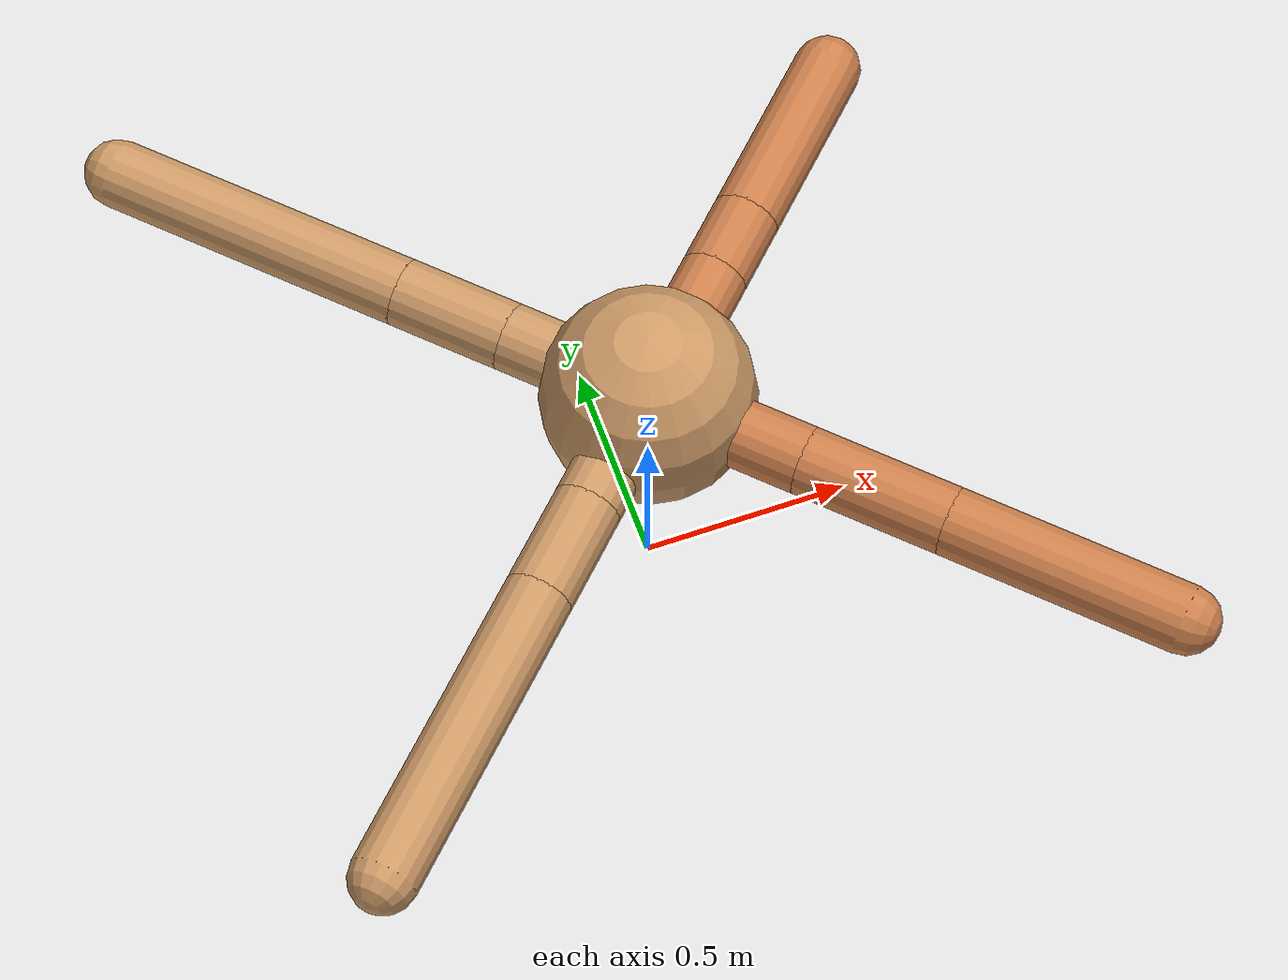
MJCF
<mujoco model="ant">
  <compiler angle="degree" coordinate="local" inertiafromgeom="true" />
  <option integrator="RK4" timestep="0.01" />
  <custom>
    <numeric data="0.0 0.0 0.55 1.0 0.0 0.0 0.0 0.0 1.0 0.0 -1.0 0.0 -1.0 0.0 1.0" name="init_qpos" />
  </custom>
  <default>
    <joint armature="1" damping="1" limited="true" />
    <geom conaffinity="0" condim="3" density="5.0" friction="1.5 0.1 0.1" margin="0.01" rgba="0.8 0.6 0.4 1" />
  </default>
  <worldbody>
    <body name="torso" pos="0 0 0.75">
      <geom name="torso_geom" pos="0 0 0" size="0.25" type="sphere" />

      <body name="front_left_leg" pos="0 0 0">
        <geom fromto="0.0 0.0 0.0 0.24680164368279256 0.24680164368279256 0.0" name="aux_1_geom" size="0.08" type="capsule" rgba=".8 .5 .3 1" />
        <body name="aux_1" pos="0.24680164368279256 0.24680164368279256 0.0">
          <joint axis="0 0 1" name="hip_1" pos="0.0 0.0 0.0" range="-40 40" type="hinge" />
          <geom fromto="0.0 0.0 0.0 0.12255419980895754 0.12255419980895754 0.0" name="left_leg_geom" size="0.08" type="capsule" rgba=".8 .5 .3 1" />
          <body pos="0.12255419980895754 0.12255419980895754 0.0" name="front_left_foot">
            <joint axis="-1 1 0" name="ankle_1" pos="0.0 0.0 0.0" range="30 100" type="hinge" />
            <geom fromto="0.0 0.0 0.0 0.3187631783305472 0.3187631783305472 0.0" name="left_ankle_geom" size="0.08" type="capsule" rgba=".8 .5 .3 1" />
          </body>
        </body>
      </body>
      <body name="front_right_leg" pos="0 0 0">
        <geom fromto="0.0 0.0 0.0 -0.24814992208332934 0.24814992208332934 0.0" name="aux_2_geom" size="0.08" type="capsule" />
        <body name="aux_2" pos="-0.24814992208332934 0.24814992208332934 0.0">
          <joint axis="0 0 1" name="hip_2" pos="0.0 0.0 0.0" range="-40 40" type="hinge" />
          <geom fromto="0.0 0.0 0.0 -0.1922512856137479 0.1922512856137479 0.0" name="right_leg_geom" size="0.08" type="capsule" />
          <body pos="-0.1922512856137479 0.1922512856137479 0.0" name="front_right_foot">
            <joint axis="1 1 0" name="ankle_2" pos="0.0 0.0 0.0" range="-100 -30" type="hinge" />
            <geom fromto="0.0 0.0 0.0 -0.523077516699287 0.523077516699287 0.0" name="right_ankle_geom" size="0.08" type="capsule" />
          </body>
        </body>
      </body>
      <body name="left_back_leg" pos="0 0 0">
        <geom fromto="0.0 0.0 0.0 -0.22237386834971373 -0.22237386834971373 0.0" name="aux_3_geom" size="0.08" type="capsule" />
        <body name="aux_3" pos="-0.22237386834971373 -0.22237386834971373 0.0">
          <joint axis="0 0 1" name="hip_3" pos="0.0 0.0 0.0" range="-40 40" type="hinge" />
          <geom fromto="0.0 0.0 0.0 -0.17369219126883817 -0.17369219126883817 0.0" name="back_leg_geom" size="0.08" type="capsule" />
          <body pos="-0.17369219126883817 -0.17369219126883817 0.0" name="left_back_foot">
            <joint axis="-1 1 0" name="ankle_3" pos="0.0 0.0 0.0" range="-100 -30" type="hinge" />
            <geom fromto="0.0 0.0 0.0 -0.531106438711251 -0.531106438711251 0.0" name="third_ankle_geom" size="0.08" type="capsule" />
          </body>
        </body>
      </body>
      <body name="right_back_leg" pos="0 0 0">
        <geom fromto="0.0 0.0 0.0 0.27524271220871926 -0.27524271220871926 0.0" name="aux_4_geom" size="0.08" type="capsule" rgba=".8 .5 .3 1" />
        <body name="aux_4" pos="0.27524271220871926 -0.27524271220871926 0.0">
          <joint axis="0 0 1" name="hip_4" pos="0.0 0.0 0.0" range="-40 40" type="hinge" />
          <geom fromto="0.0 0.0 0.0 0.250508793461512 -0.250508793461512 0.0" name="rightback_leg_geom" size="0.08" type="capsule" rgba=".8 .5 .3 1" />
          <body pos="0.250508793461512 -0.250508793461512 0.0" name="right_back_foot">
            <joint axis="1 1 0" name="ankle_4" pos="0.0 0.0 0.0" range="30 100" type="hinge" />
            <geom fromto="0.0 0.0 0.0 0.4010723283804774 -0.4010723283804774 0.0" name="fourth_ankle_geom" size="0.08" type="capsule" rgba=".8 .5 .3 1" />
          </body>
        </body>
      </body>
    </body>
  </worldbody>
  <actuator>
    <motor ctrllimited="true" ctrlrange="-1.0 1.0" joint="hip_4" gear="150" />
    <motor ctrllimited="true" ctrlrange="-1.0 1.0" joint="ankle_4" gear="150" />
    <motor ctrllimited="true" ctrlrange="-1.0 1.0" joint="hip_1" gear="150" />
    <motor ctrllimited="true" ctrlrange="-1.0 1.0" joint="ankle_1" gear="150" />
    <motor ctrllimited="true" ctrlrange="-1.0 1.0" joint="hip_2" gear="150" />
    <motor ctrllimited="true" ctrlrange="-1.0 1.0" joint="ankle_2" gear="150" />
    <motor ctrllimited="true" ctrlrange="-1.0 1.0" joint="hip_3" gear="150" />
    <motor ctrllimited="true" ctrlrange="-1.0 1.0" joint="ankle_3" gear="150" />
  </actuator>
</mujoco>
